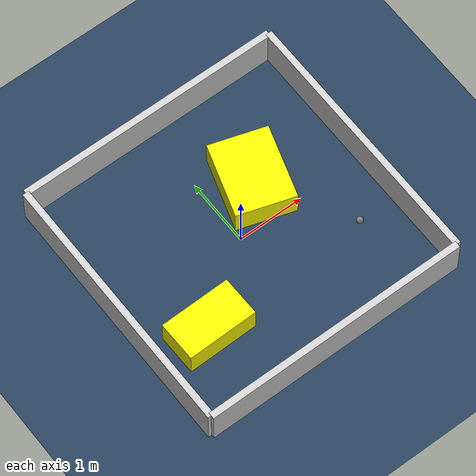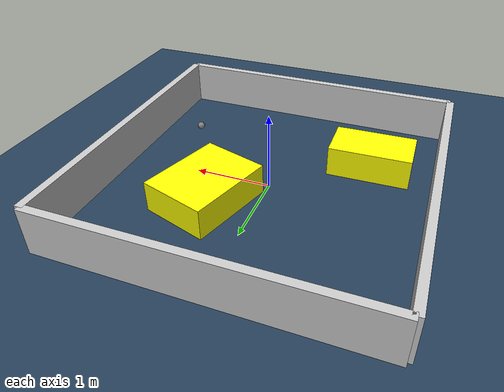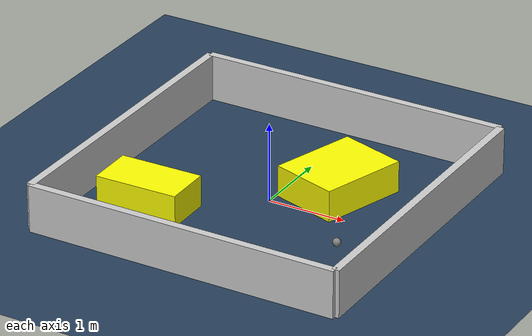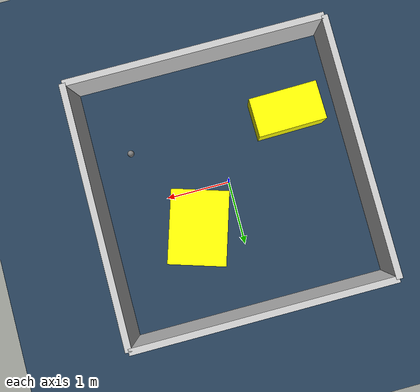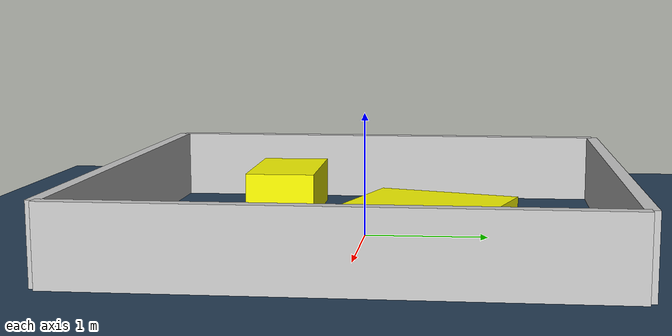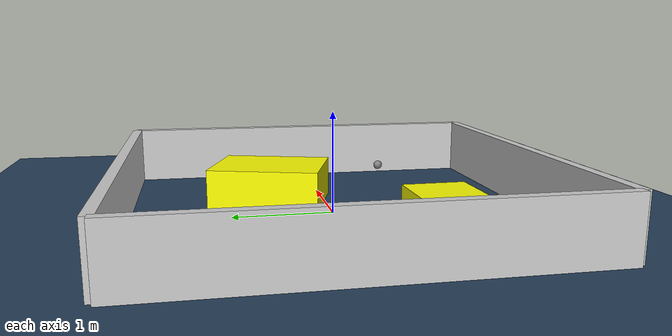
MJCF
<?xml version="1.0" ?>
<mujoco model="generated_environment">
  <option timestep="0.01" integrator="RK4" cone="elliptic"/>
  <default>
    <geom density="1"/>
  </default>
  <asset>
    <texture builtin="gradient" height="3072" rgb1="0.3 0.5 0.7" rgb2="0 0 0" type="skybox" width="512"/>
    <texture builtin="checker" height="300" mark="edge" markrgb="0.8 0.8 0.8" name="groundplane" rgb1="0.2 0.3 0.4" rgb2="0.1 0.2 0.3" type="2d" width="300"/>
    <material name="groundplane" reflectance="0.2" texrepeat="5 5" texture="groundplane" texuniform="true"/>
    <material name="robot" rgba="0.0 1.0 0.0 1"/>
  </asset>
  <worldbody>
    <light dir="0 0 -1" directional="true" pos="0 0 1.5"/>
    <geom condim="4" friction="1.0 0.005 0.001" material="groundplane" name="floor" size="0 0 0.05" type="plane"/>
    <body name="walls">
      <geom name="wall_1" condim="4" pos="-2.0 0.0 0.3" rgba="0.800000011920929 0.800000011920929 0.800000011920929 1.0" size="0.05 2.0 0.3" type="box"/>
      <geom name="wall_2" condim="4" pos="2.0 0.0 0.3" rgba="0.800000011920929 0.800000011920929 0.800000011920929 1.0" size="0.05 2.0 0.3" type="box"/>
      <geom name="wall_3" condim="4" pos="0.0 -2.0 0.3" rgba="0.800000011920929 0.800000011920929 0.800000011920929 1.0" size="2.0 0.05 0.3" type="box"/>
      <geom name="wall_4" condim="4" pos="0.0 2.0 0.3" rgba="0.800000011920929 0.800000011920929 0.800000011920929 1.0" size="2.0 0.05 0.3" type="box"/>
    </body>
    <body name="robot">
      <joint name="joint_x" type="slide" pos="0 0 0" axis="1 0 0"/>
      <joint name="joint_y" type="slide" pos="0 0 0" axis="0 1 0"/>
      <geom name="robot" type="sphere" pos="1.3519998775997166 -0.80513671347732 0.2" size="0.05" mass="5." friction="1.0 0.005 0.0001" condim="4"/>
      <site name="sensor_ball"/>
    </body>
    <body name="obstacle_1_movable">
      <geom name="obstacle_1_movable" condim="4" pos="-1.1459551839822848 -0.8239007248874497 0.2" euler="0 0 271.00278052756533" friction="1.0 0.005 0.001" rgba="1 1 0 1" size="0.3010350432394143 0.5299961418594072 0.2" type="box" mass="0.1"/>
      <joint type="free"/>
    </body>
    <body name="obstacle_2_movable">
      <geom name="obstacle_2_movable" condim="4" pos="0.611472875267631 0.5554128175555688 0.2" euler="0 0 162.61751466008027" friction="1.0 0.005 0.001" rgba="1 1 0 1" size="0.4386716492195643 0.5623375226756908 0.2" type="box" mass="0.1"/>
      <joint type="free"/>
    </body>
  </worldbody>
  <actuator>
    <motor name="actuator_x" joint="joint_x" gear="1" ctrlrange="-1 1"/>
    <motor name="actuator_y" joint="joint_y" gear="1" ctrlrange="-1 1"/>
  </actuator>
</mujoco>
